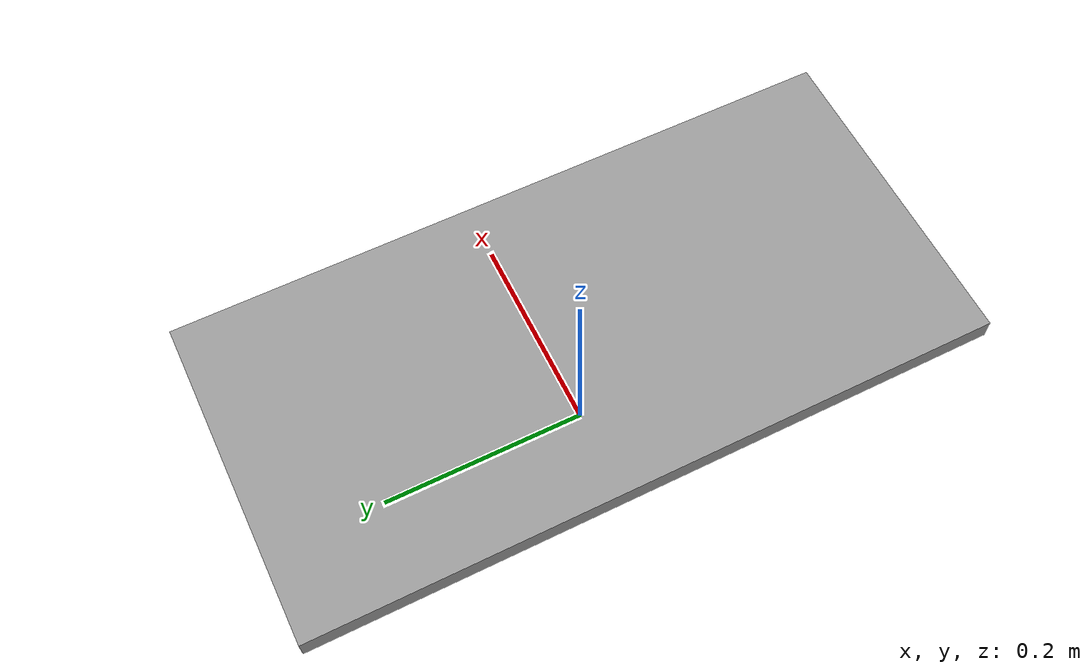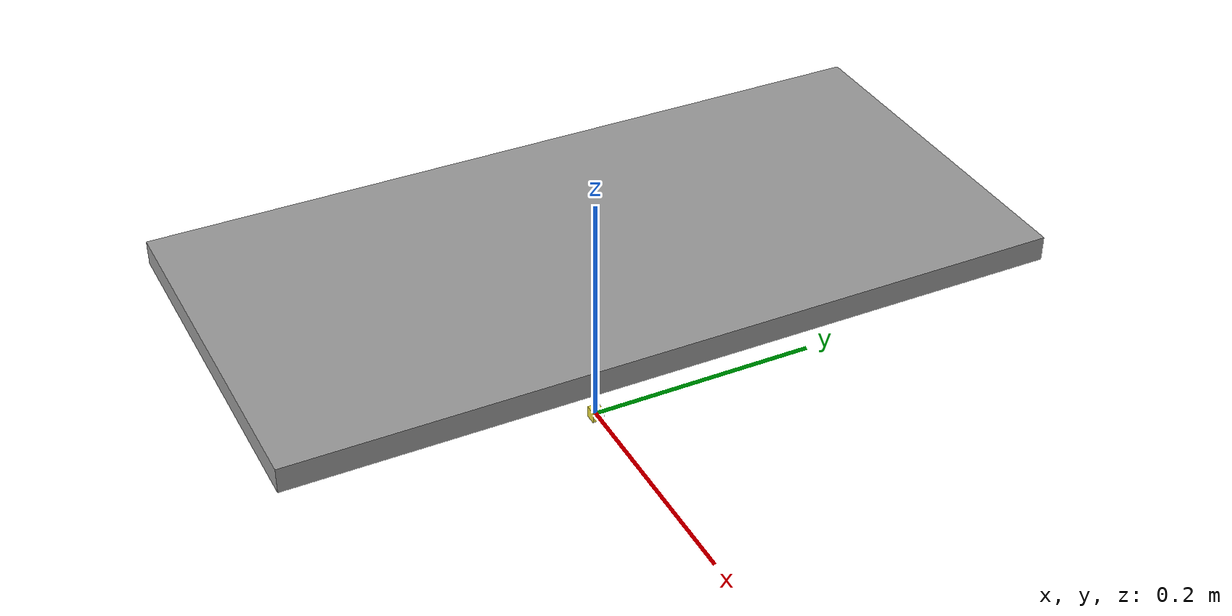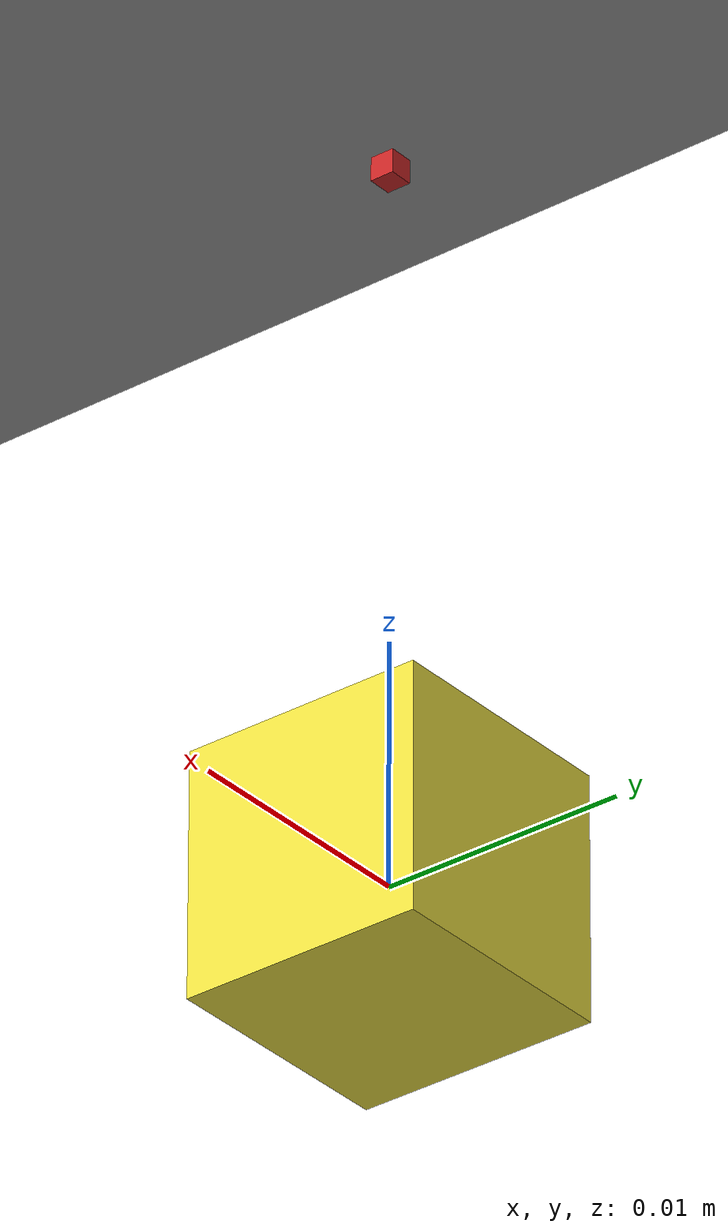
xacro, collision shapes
<robot name="laser_tilt_test"
        xmlns:joint="http://playerstage.sourceforge.net/gazebo/xmlschema/#joint">

  <include filename="$(find pr2_defs)/defs/materials.urdf.xacro" />
  <include filename="$(find pr2_defs)/defs/head/head_defs.urdf.xacro" />
  <include filename="$(find pr2_defs)/defs/body/body_defs.urdf.xacro" />

  <pr2_torso name="torso_lift" parent="base_link">
    <origin xyz="0 0 0" rpy="0 0 0" />
  </pr2_torso>

  <pr2_tilting_laser name="laser_tilt" parent="torso_lift_link" laser_calib_ref="-0.35">
    <origin xyz="0 0 0.03" rpy="0 0 0" />
  </pr2_tilting_laser>

  <!-- Base -->
  <link name="base_link">
    <inertial>
      <mass value="100" />
      <origin xyz="0 0 1" />
      <inertia ixx="100"  ixy="0"  ixz="0" iyy="1000" iyz="0" izz="1000" />
    </inertial>
    <visual>
      <origin xyz="0 0 0" rpy="0 0 0 " />
      <geometry>
        <box size="0.01 0.01 0.01" />
      </geometry>
    </visual>
    <collision>
      <origin xyz="0 0 0" rpy="0.0 0.0 0.0" />
      <geometry>
        <box size="0.01 0.01 0.01" />
      </geometry>
    </collision>
  </link>

  <gazebo>
    <!-- fixed joint to the world for simulation -->
    <joint:hinge name="base_fixed_joint">
      <body1>world</body1>
      <body2>base_link</body2>
      <anchor>base_link</anchor>
      <lowStop>0</lowStop>
      <highStop>0</highStop>
      <axis>0 1 0</axis>
    </joint:hinge>
  </gazebo>

</robot>

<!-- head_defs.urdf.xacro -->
<robot xmlns:sensor="http://playerstage.sourceforge.net/gazebo/xmlschema/#sensor"
       xmlns:controller="http://playerstage.sourceforge.net/gazebo/xmlschema/#controller"
       xmlns:interface="http://playerstage.sourceforge.net/gazebo/xmlschema/#interface">

  <include filename="$(find pr2_defs)/defs/head/head_sensor_package_defs.urdf.xacro" />
  <include filename="$(find pr2_defs)/defs/head/head_gazebo.xacro" />
  <include filename="$(find pr2_defs)/defs/head/head_transmission.xacro" />

  <property name="M_PI" value="3.1415926535897931" />

  <macro name="pr2_head_pan" params="name parent *origin">

    <joint name="${name}_joint" type="revolute">
      <axis xyz="0 0 1" />
      <limit lower="-2.92" upper="2.92" effort="2.645" velocity="6" />
      <safety_controller k_velocity="1.5" soft_lower_limit="${-2.92+0.15}" soft_upper_limit="${2.92-0.15}" k_position="100" />
      <calibration reference_position="${-2.79+cal_head_pan_flag}" />
      <dynamics damping="1.0" />
      <insert_block name="origin" />
      <parent link="${parent}"/>
      <child link="${name}_link"/>
    </joint>
    <link name="${name}_link">

      <inertial>
        <mass value="1.611118" />
        <origin xyz="-0.005717  0.010312 -0.029649" rpy="0 0 0" />
        <inertia ixx="0.00482611007"  ixy="-0.000144683999"  ixz="0.000110076136"
                 iyy="0.005218991412"  iyz="-0.000314239509"  izz="0.008618784925" />
      </inertial>

      <visual name="${name}_visual">
        <origin xyz="0 0 0.0" rpy="0 0 0 " />
        <geometry name="${name}_visual_geom">
          <mesh filename="package://pr2_defs/meshes/head_pan.stl" />
        </geometry>

        <material name="Blue" />
      </visual>

      <collision name="${name}_collision">
        <origin xyz="-0.005717  0.010312 -0.029649" rpy="0.0 0.0 0.0 " />
        <geometry name="${name}_collision_geom">
          <box size="0.188 0.219 0.137" />
        </geometry>
      </collision>

    </link>

    <!-- extensions -->
    <pr2_head_pan_gazebo name="${name}" />
    <pr2_head_pan_transmission name="${name}" />
  </macro>

  <macro name="pr2_head_tilt" params="name parent *origin">

    <joint name="${name}_joint" type="revolute">
      <axis xyz="0 1 0" />
      <limit lower="-0.55" upper="1.047" effort="12.21" velocity="100" />
      <safety_controller k_velocity="1.5" soft_lower_limit="${-0.55+0.02}" soft_upper_limit="${1.047-0.002}" k_position="100" />
      <calibration reference_position="${-0.195+cal_head_tilt_flag}" />
      <dynamics damping="1.0" />
      <insert_block name="origin" />
      <parent link="${parent}"/>
      <child link="${name}_link"/>
    </joint>
    <link name="${name}_link">

      <inertial>
        <mass value="1.749727" />
        <origin xyz="0.041935 0.003569 0.028143" rpy="0 0 0" />
        <inertia ixx="0.010602303435"  ixy="-0.000408814235"  ixz="0.00198303894"
                 iyy="0.011874383747"  iyz="0.000197908779"
                 izz="0.005516790626" />
      </inertial>

      <visual name="${name}_visual">
        <origin xyz="0 0 0" rpy="0.0 0.0 0.0 " />
        <geometry name="${name}_visual_geom">
          <mesh filename="package://pr2_defs/meshes/head_tilt.stl" />
        </geometry>

        <material name="Green" />
      </visual>

      <collision name="${name}_collision">
        <origin xyz="0.041935 0.003569 0.028143" rpy="0 0 0" />
        <geometry name="${name}_collision_geom">
          <box size="0.064 0.253 0.181" />
        </geometry>
      </collision>
    </link>

    <!-- extensions -->
    <pr2_head_tilt_gazebo name="${name}" />
    <pr2_head_tilt_transmission name="${name}" />
  </macro>

  <macro name="pr2_head" params="name parent *origin">
    <pr2_head_pan name="${name}_pan" parent="${parent}">
      <insert_block name="origin" />
    </pr2_head_pan>

    <pr2_head_tilt name="${name}_tilt" parent="${name}_pan_link">
      <origin xyz="0.058 0 0" rpy="0 0 0" />
    </pr2_head_tilt>

    <!-- Head plate frame -->
    <joint name="${name}_plate_frame_joint" type="fixed">
      <origin xyz="0.0232 0 0.0645" rpy="0 0 0" />
      <parent link="${name}_tilt_link"/>
      <child link="${name}_plate_frame"/>
    </joint>
    <link name="${name}_plate_frame">

      <inertial>
        <mass value="0.01" />
        <origin xyz="0 0 0" rpy="0 0 0" />
        <inertia ixx="0.001"  ixy="0.0"  ixz="0.0"
                 iyy="0.001"  iyz="0.0"
                 izz="0.001" />
      </inertial>

      <visual name="${name}_plate_frame_visual">
        <origin xyz="0 0 0" rpy="0 0 0" />
        <geometry name="${name}_plate_frame_visual_geom">
          <box size="0.01 0.01 0.01" />
        </geometry>

        <material name="Blue" />
      </visual>

      <collision name="${name}_plate_frame_collision">
        <origin xyz="0 0 0" rpy="0 0 0" />
        <geometry name="${name}_plate_frame_collision_geom">
          <box size="0.01 0.01 0.01" />
        </geometry>
      </collision>
    </link>

    <!-- extensions -->
    <pr2_head_gazebo name="${name}" />

  </macro>

</robot>

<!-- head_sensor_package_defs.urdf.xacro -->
<robot xmlns:sensor="http://playerstage.sourceforge.net/gazebo/xmlschema/#sensor"
       xmlns:controller="http://playerstage.sourceforge.net/gazebo/xmlschema/#controller"
       xmlns:interface="http://playerstage.sourceforge.net/gazebo/xmlschema/#interface">

  <include filename="$(find pr2_defs)/defs/head/head_sensor_package_gazebo.xacro" />
  <include filename="$(find pr2_defs)/defs/head/head_sensor_package_transmission.xacro" />

  <property name="stereo_size_x" value="0.005" />
  <property name="stereo_size_y" value="0.010" />
  <property name="stereo_size_z" value="0.005" />
  <property name="stereo_center_box_center_offset_x" value="0.00" />
  <property name="stereo_center_box_center_offset_z" value="0.05" />
  <property name="stereo_dx" value="0.00" />
  <property name="stereo_dy" value="-0.09" /> <!-- +y to the left -->
  <property name="stereo_dz" value="0.00" />
  <property name="stereo_rx" value="0.00" />
  <property name="stereo_ry" value="0.00" />
  <property name="stereo_rz" value="0.00" />

  <macro name="pr2_tilting_laser" params="name parent *origin">

    <joint name="${name}_mount_joint" type="revolute">
      <axis xyz="0 1 0" />
      <limit lower="-0.785" upper="1.57" effort="0.5292" velocity="10.0" />
      <safety_controller k_position="100" k_velocity="0.05" soft_lower_limit="${-0.785+0.0}" soft_upper_limit="${1.57-0.0}" />
      <calibration reference_position="-0.35" />
      <dynamics damping="0.008" />
      <insert_block name="origin" />
      <parent link="${parent}"/>
      <child link="${name}_mount_link"/>
    </joint>
    <link name="${name}_mount_link">

      <inertial>
        <mass value="0.05" />
        <origin xyz="-0.03 0 -0.03" rpy="0 0 0" />
        <inertia ixx="0.0001" ixy="0" ixz="0"
                 iyy="0.00001" iyz="0"
                 izz="0.0001" />
      </inertial>

      <visual name="${name}_mount_visual">
        <origin xyz="0 0 0" rpy="0 0 0" />
        <geometry name="${name}_mount_visual_geom">
          <mesh filename="package://pr2_defs/meshes/hok_tilt.stl" />
        </geometry>

        <material name="Red" />
      </visual>

      <collision name="${name}_mount_collision">
        <origin xyz="0 0 0" rpy="0 0 0" />
        <geometry name="${name}_mount_collision_geom" >
          <box size=".001 .001 .001" />
        </geometry>
      </collision>
    </link>

    <joint name="${name}_joint" type="fixed">
      <axis xyz="0 1 0" />
      <origin xyz="0 0 0.03" rpy="0 0 0" />
      <parent link="${name}_mount_link"/>
      <child link="${name}_link"/>
    </joint>
    <link name="${name}_link" type="laser">

      <inertial>
        <mass value="0.001" />
        <origin xyz="0 0 0" rpy="0 0 0" />
        <inertia ixx="0.0001" ixy="0" ixz="0" iyy="0.000001" iyz="0" izz="0.0001" />
      </inertial>

      <visual name="${name}_visual">
        <origin xyz="0 0 0" rpy="0 0 0" />
        <geometry name="${name}_visual_geom">
          <box size="0.001 0.001 0.001" />
        </geometry>

        <material name="Red" />
      </visual>

      <collision name="${name}_collision">
        <origin xyz="0 0 0" rpy="0 0 0" />
        <geometry name="${name}_collision_geom" >
          <box size=".001 .001 .001" />
        </geometry>
      </collision>
    </link>

    <!-- extensions -->
    <pr2_tilting_laser_gazebo name="${name}"/>
    <pr2_tilting_laser_transmission name="${name}"/>
  </macro>

  <!-- Made by Kevin for A2 sensor package -->
  <!-- Origin is center mount screw on sensor plate mount -->
  <!-- When mounted properly, should have same origin as head plate frame -->
  <macro name="pr2_head_sensor_package" params="name hd_name stereo_name parent *origin">
    <joint name="${name}_frame_joint" type="fixed">
      <insert_block name="origin" />
      <parent link="${parent}"/>
      <child link="${name}_link"/>
    </joint>
    <link name="${name}_link" >

      <inertial>
        <!-- Needs verification with CAD -->
        <mass value="0.05" />
        <origin xyz="0 0 0" rpy="0 0 0" />
        <inertia ixx="0.001" ixy="0.0" ixz="0.0"
                 iyy="0.001" iyz="0.0" izz="0.01" />
      </inertial>

      <!-- Should probably get real visuals here at some point -->
      <visual name="${name}_sensor_visual">
        <origin xyz="0 0 0" rpy="0 0 0" />
        <geometry name="${name}_sensor_visual_geom">
          <box size="0.01 0.01 0.01" />
        </geometry>

        <material name="Blue" />
      </visual>

      <collision name="${name}_sensor_collision">
        <origin xyz="0 0 0" rpy="0 0 0" />
        <geometry name="${name}_sensor_collision_geom">
          <box size="0.01 0.01 0.01" />
        </geometry>
      </collision>
    </link>

    <!-- Prosilica Camera -->
    <prosilica_cam name="${hd_name}" parent="${name}_link" >
      <!-- Center of camera is 109mm right of center screw, 35mm up -->
      <!-- Camera is slightly recessed from front, where is camera origin? Lens? -->
      <origin xyz="0 -0.109 0.035" rpy="0 0 0" />
    </prosilica_cam>

    <!-- Stereocam -->
    <double_stereo_camera name="${stereo_name}" parent="${name}_link" >
      <origin xyz="0.0 0.0 0.003" rpy="0 0 0" />
    </double_stereo_camera>

    <!-- extensions -->
    <pr2_head_sensor_package_gazebo name="${name}" />

  </macro>

  <!-- Made by Kevin for double stereo camera for PR-2 Beta. -->
  <!-- Needs calibration verification, and CAD check. -->
  <macro name="double_stereo_camera" params="name parent *origin">
    <!-- Define link to stereo cameras, set origin relative to that -->
    <joint name="${name}_frame_joint" type="fixed">
      <insert_block name="origin" />
      <parent link="${parent}"/>
      <child link="${name}_link"/>
    </joint>
    <link name="${name}_link">

      <inertial>
        <!-- Needs verification with CAD -->
        <mass value="0.1" />
        <origin xyz="0 0 0" rpy="0 0 0" />
        <inertia ixx="0.001" ixy="0.0" ixz="0.0"
                 iyy="0.001" iyz="0.0" izz="0.01" />
      </inertial>

      <!-- Should probably get real visuals here at some point -->
      <visual name="${name}_double_stereo_visual">
        <origin xyz="0 0 0" rpy="0 0 0" />
        <geometry name="${name}_double_stereo_visual_geom">
          <box size="0.01 0.01 0.01" />
        </geometry>

        <material name="Blue" />
      </visual>

      <collision name="${name}_double_stereo_collision">
        <origin xyz="0 0 0" rpy="0 0 0" />
        <geometry name="${name}_double_stereo_collision_geom">
          <box size="0.01 0.01 0.01" />
        </geometry>
      </collision>
    </link>

    <!-- Wide camera is on robot right (hca1), narrow on left (hca2)? -->
    <!-- 15mm offset from center needs check with CAD -->
    <stereo_camera parent="${name}_link" name="wide_stereo" >
      <origin xyz="0 -0.015 0" rpy="0 0 0" />
    </stereo_camera>

    <stereo_camera parent="${name}_link" name="narrow_stereo" >
      <origin xyz="0 0.015 0" rpy="0 0 0" />
    </stereo_camera>

    <!-- extensions -->
    <double_stereo_camera_gazebo name="${name}" />

    <!-- extensions -->
    <stereo_camera_gazebo_wide name="wide_stereo" />
    <stereo_camera_gazebo_narrow name="narrow_stereo" />

  </macro>

  <macro name="stereo_camera" params="name parent *origin">

    <joint name="${name}_frame_joint" type="fixed">
      <insert_block name="origin" />
      <parent link="${parent}"/>
      <child link="${name}_link"/>
    </joint>
    <link name="${name}_link">

      <inertial>
        <mass value="0.1" />
        <origin xyz="0 0 0" rpy="0 0 0" />
        <inertia ixx="0.00482611007"  ixy="-0.000144683999"  ixz="0.000110076136"
                 iyy="0.005218991412"  iyz="-0.000314239509"  izz="0.008618784925" />
      </inertial>

      <visual name="${name}_visual">
        <origin xyz="${stereo_center_box_center_offset_x} 0 ${stereo_center_box_center_offset_z}" rpy="0 0 0" />
        <geometry name="${name}_visual_geom">
          <box size="${stereo_size_x} ${stereo_size_y} ${stereo_size_z}" />
        </geometry>

        <material name="Blue" />
      </visual>

      <collision name="${name}_collision">
        <origin xyz="${stereo_center_box_center_offset_x} 0 ${stereo_center_box_center_offset_z}" rpy="0 0 0" />
        <geometry name="${name}_collision_geom">
          <box size="${stereo_size_x} ${stereo_size_y} ${stereo_size_z}" />
        </geometry>
      </collision>

    </link>

    <joint name="${name}_optical_frame_joint" type="fixed">
      <origin xyz="${cal_stereo_x}            ${0.045+cal_stereo_y}   ${.0305+cal_stereo_z}" rpy="${-M_PI/2+cal_stereo_roll} ${0.0+cal_stereo_pitch} ${-M_PI/2+cal_stereo_yaw}" />
      <parent link="${name}_link"/>
      <child link="${name}_optical_frame"/>
    </joint>
    <link name="${name}_optical_frame" type="camera">

      <inertial>
        <mass value="0.01" />
        <origin xyz="0 0 0" rpy="0 0 0" />
        <inertia ixx="0.001"  ixy="0.0"  ixz="0.0"
                 iyy="0.001"  iyz="0.0"
                 izz="0.001" />
      </inertial>

      <visual name="${name}_optical_frame_visual">
        <origin xyz="0 0 0" rpy="0 0 0" />
        <geometry name="${name}_optical_frame_visual_geom">
          <box size="0.01 0.01 0.01" />
        </geometry>

        <material name="Blue" />
      </visual>

      <collision name="${name}_optical_frame_collision">
        <origin xyz="0 0 0" rpy="0 0 0" />
        <geometry name="${name}_optical_frame_collision_geom">
          <box size="0.01 0.01 0.01" />
        </geometry>
      </collision>

    </link>

    <joint name="${name}_l_stereo_camera_frame_joint" type="fixed">
      <origin xyz="0 0 0" rpy="0 ${-M_PI/2} ${M_PI/2}" />
      <parent link="${name}_optical_frame"/>
      <child link="${name}_l_stereo_camera_frame"/>
    </joint>
    <link name="${name}_l_stereo_camera_frame">

      <inertial>
        <mass value="0.01" />
        <origin xyz="0 0 0" rpy="0 0 0" />
        <inertia ixx="0.001" ixy="0.000"  ixz="0.000"
                 iyy="0.001" iyz="0.000"
                 izz="0.001" />
      </inertial>

      <visual name="${name}_l_stereo_camera_visual">
        <origin xyz="0 0 0" rpy="0 0 0" />
        <geometry name="${name}_l_stereo_camera_visual_geom">
          <box size="0.01 0.01 0.01" />
        </geometry>

        <material name="Blue" />
      </visual>

      <collision name="${name}_l_stereo_camera_collision">
        <origin xyz="0 0 0" rpy="0 0 0" />
        <geometry name="${name}_l_stereo_camera_collision_geom">
          <box size="0.01 0.01 0.01" />
        </geometry>
      </collision>

    </link>

    <joint name="${name}_r_stereo_camera_frame_joint" type="fixed">
      <origin xyz="${stereo_dx} ${stereo_dy} ${stereo_dz}" rpy="${stereo_rx} ${stereo_ry} ${stereo_rz}" />
      <parent link="${name}_l_stereo_camera_frame"/>
      <child link="${name}_r_stereo_camera_frame"/>
    </joint>
    <link name="${name}_r_stereo_camera_frame">

      <inertial>
        <mass value="0.01" />
        <origin xyz="0 0 0" rpy="0 0 0" />
        <inertia ixx="0.001" ixy="0.000"  ixz="0.000"
                 iyy="0.001" iyz="0.000"
                 izz="0.001" />
      </inertial>

      <visual name="${name}_r_stereo_camera_visual">
        <origin xyz="0 0 0" rpy="0 0 0" />
        <geometry name="${name}_r_stereo_camera_visual_geom">
          <box size="0.01 0.01 0.01" />
        </geometry>

        <material name="Blue" />
      </visual>

      <collision name="${name}_r_stereo_camera_collision">
        <origin xyz="0 0 0" rpy="0 0 0" />
        <geometry name="${name}_r_stereo_camera_collision_geom">
          <box size="0.01 0.01 0.01" />
        </geometry>
      </collision>

    </link>

  </macro>

</robot>

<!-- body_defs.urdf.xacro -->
<robot xmlns:sensor="http://playerstage.sourceforge.net/gazebo/xmlschema/#sensor"
       xmlns:controller="http://playerstage.sourceforge.net/gazebo/xmlschema/#controller"
       xmlns:interface="http://playerstage.sourceforge.net/gazebo/xmlschema/#interface">

  <include filename="$(find pr2_defs)/defs/body/body_gazebo.xacro" />
  <include filename="$(find pr2_defs)/defs/body/body_transmission.xacro" />

  <macro name="pr2_torso" params="name parent *origin">

    <joint name="${name}_joint" type="prismatic">
      <axis xyz="0 0 1" />
      <!-- KWatts: Max should be 0.31, changed to 0.20 to prevent jamming -->
      <!-- HW ticket 481, will examine spine to determine failures -->
      <limit lower="0.0" upper="0.20" effort="10000" velocity="0.015"/>
      <safety_controller  k_velocity="400000" soft_lower_limit="${0.0+0.005}" soft_upper_limit="${0.20-0.005}" k_position="1000" />
      <calibration reference_position="0.00536" />
      <dynamics damping="10.0" />
      <insert_block name="origin" />
      <parent link="${parent}"/>
      <child link="${name}_link"/>
    </joint>
    <link name="${name}_link">

      <inertial>
        <!-- from function 090224_link_data.xls -->
        <mass value="36.248046" />
        <origin xyz="-0.1 0 -0.0885" />
        <inertia ixx="2.771653750257" ixy="0.004284522609" ixz="-0.160418504506"
                 iyy="2.510019507959" iyz="0.029664468704" izz="0.526432355569" />
      </inertial>

      <visual name="${name}_visual">
        <origin xyz="0 0 0" rpy="0 0 0" />
        <geometry name="${name}_visual_geom">
          <mesh filename="package://pr2_defs/meshes/torso.stl" />
        </geometry>
        <material name="Grey2" />
      </visual>

      <collision name="${name}_collision">
        <origin xyz="0 0 0.16" rpy="0 0 0" />
        <geometry name="${name}_collision_geom">
          <!-- arbitrarily chosen collision box by JH, torso collision is not important for now -->
          <box size="0.30 0.620 0.02" />
        </geometry>
      </collision>
    </link>

    <!-- extensions -->
    <pr2_torso_gazebo name="${name}" />
    <pr2_torso_transmission name="${name}" />

  </macro>

</robot>
